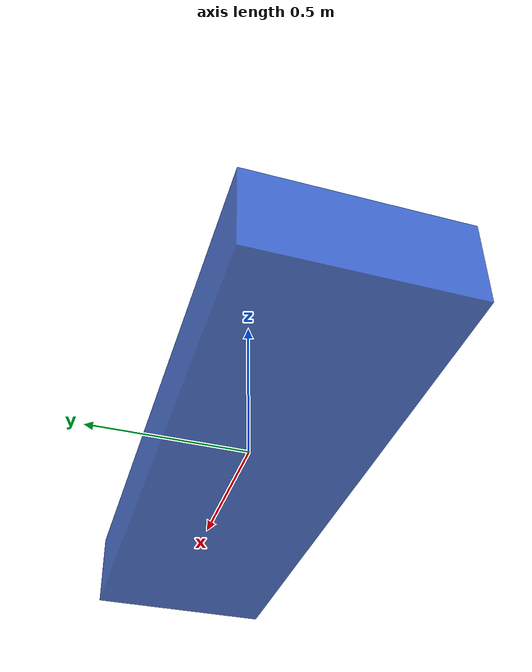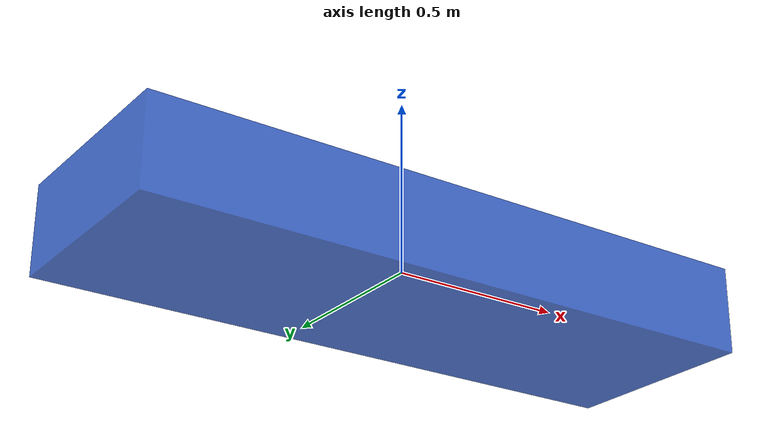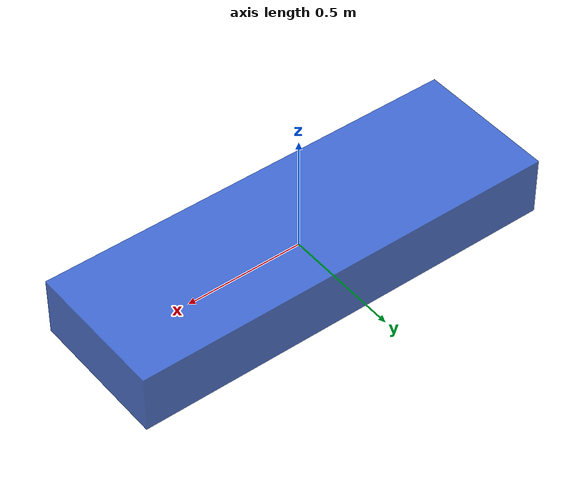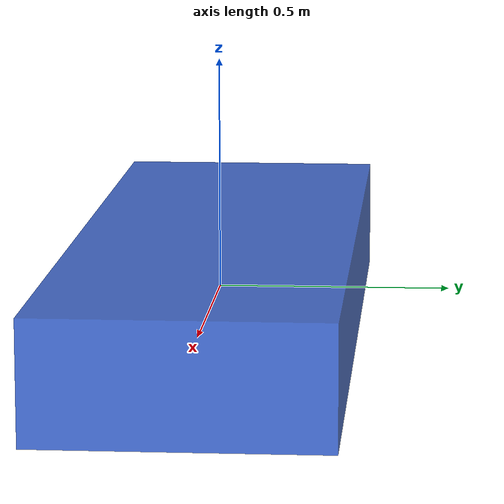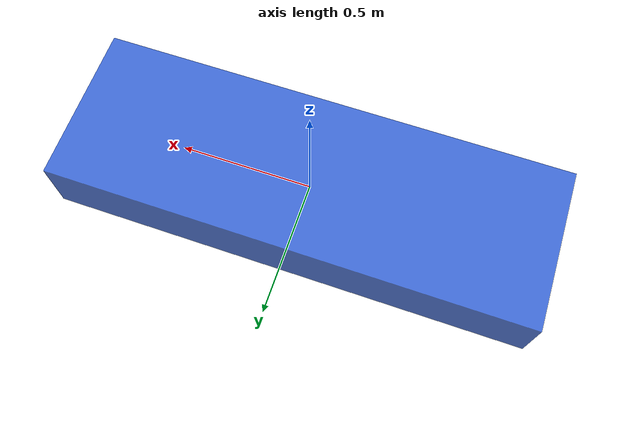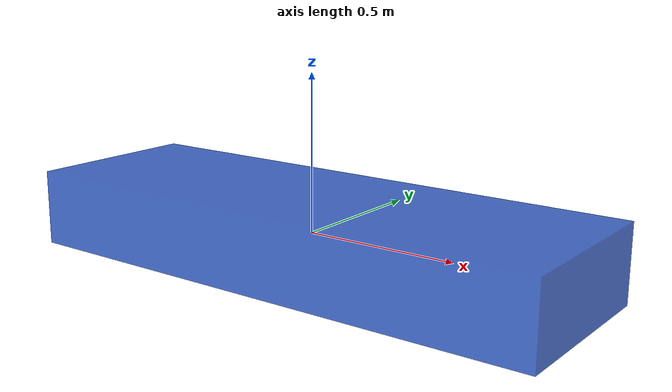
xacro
<?xml version="1.0"?>
<robot xmlns:xacro="http://www.ros.org/wiki/xacro" name="simple_usv">

  <!-- Base link -->
  <link name="base_link">
    <inertial>
      <origin xyz="0 0 0" rpy="0 0 0"/>
      <mass value="35.0"/>
      <inertia ixx="2.0" ixy="0.0" ixz="0.0" iyy="3.0" iyz="0.0" izz="3.5"/>
    </inertial>
    <visual>
      <origin xyz="0 0 0" rpy="0 0 0"/>
      <geometry>
        <box size="1.8 0.6 0.25"/>
      </geometry>
      <material name="blue">
        <color rgba="0.1 0.3 0.8 0.8"/>
      </material>
    </visual>
    <collision>
      <origin xyz="0 0 0" rpy="0 0 0"/>
      <geometry>
        <box size="1.8 0.6 0.25"/>
      </geometry>
    </collision>
  </link>

  <link name="imu_link">
    <inertial>
      <origin xyz="0 0 0" rpy="0 0 0"/>
      <mass value="0.05"/>
      <inertia ixx="1e-5" ixy="0.0" ixz="0.0" iyy="1e-5" iyz="0.0" izz="1e-5"/>
    </inertial>
  </link>

  <joint name="imu_joint" type="fixed">
    <parent link="base_link"/>
    <child link="imu_link"/>
    <origin xyz="0.0 0.0 0.15" rpy="0 0 0"/>
  </joint>

  <!-- Gazebo plugins -->
  <gazebo>
    <!-- Velocity control for /cmd_vel -->
    <plugin filename="ignition-gazebo-velocity-control-system" name="ignition::gazebo::systems::VelocityControl">
      <topic>/cmd_vel</topic>
    </plugin>

    <!-- Ground-truth odometry published on /odom (odom -> base_link) -->
    <plugin filename="ignition-gazebo-odometry-publisher-system" name="ignition::gazebo::systems::OdometryPublisher">
      <odom_frame>odom</odom_frame>
      <robot_base_frame>base_link</robot_base_frame>
      <odom_topic>/odom</odom_topic>
      <dimensions>2</dimensions>
      <odom_publish_frequency>50</odom_publish_frequency>
    </plugin>

    <!-- Model pose published on /model/usv/pose -->
    <plugin filename="ignition-gazebo-pose-publisher-system" name="ignition::gazebo::systems::PosePublisher">
      <publish_link_pose>true</publish_link_pose>
      <publish_visual_pose>false</publish_visual_pose>
      <publish_nested_model_pose>false</publish_nested_model_pose>
      <publish_model_pose>true</publish_model_pose>
    </plugin>
  </gazebo>
</robot>
